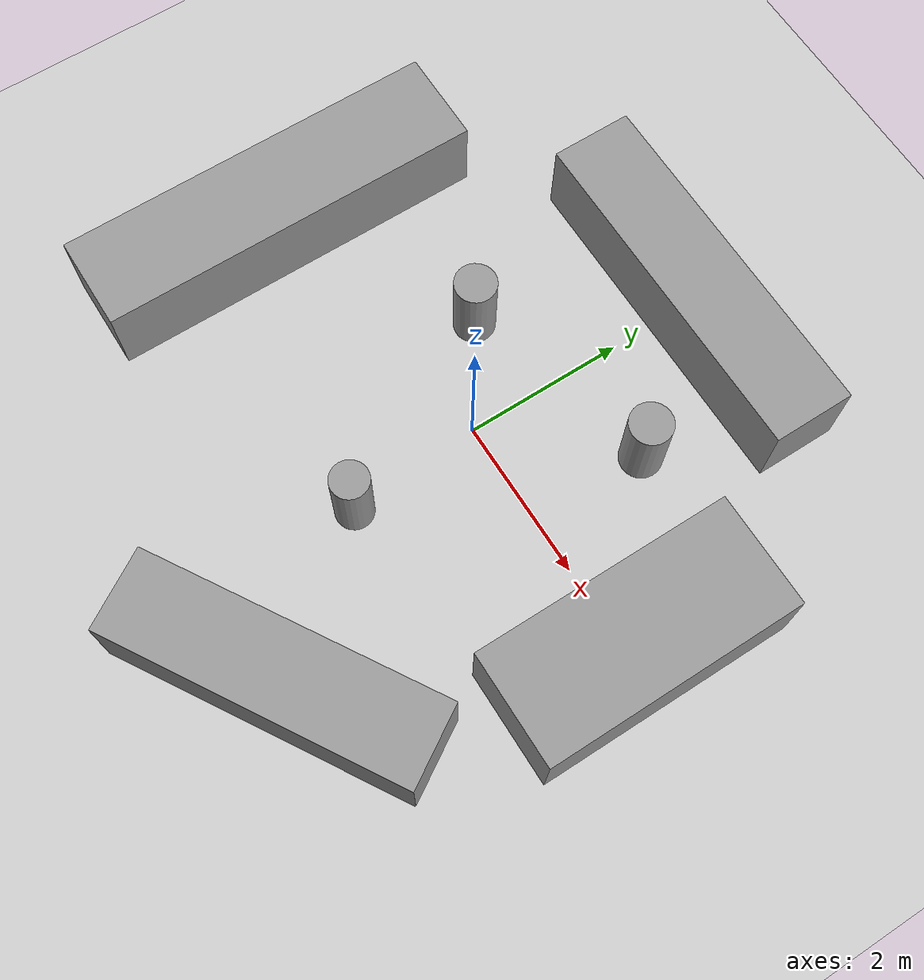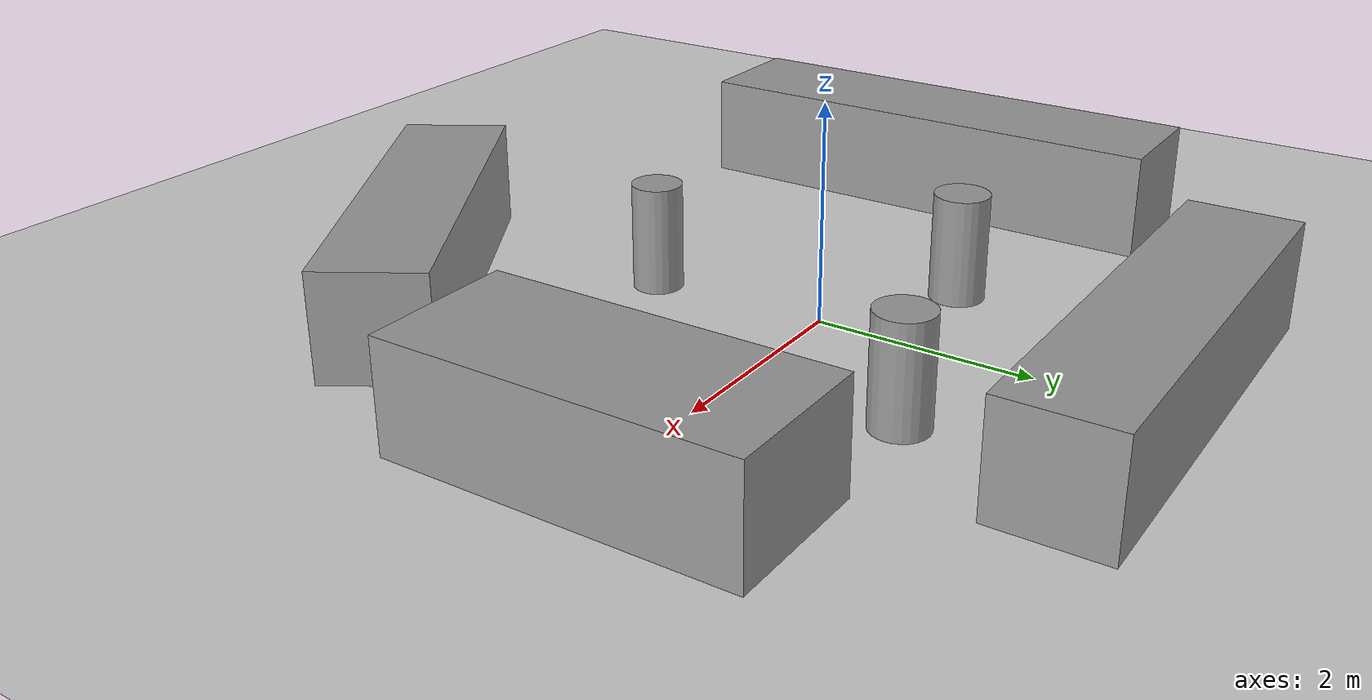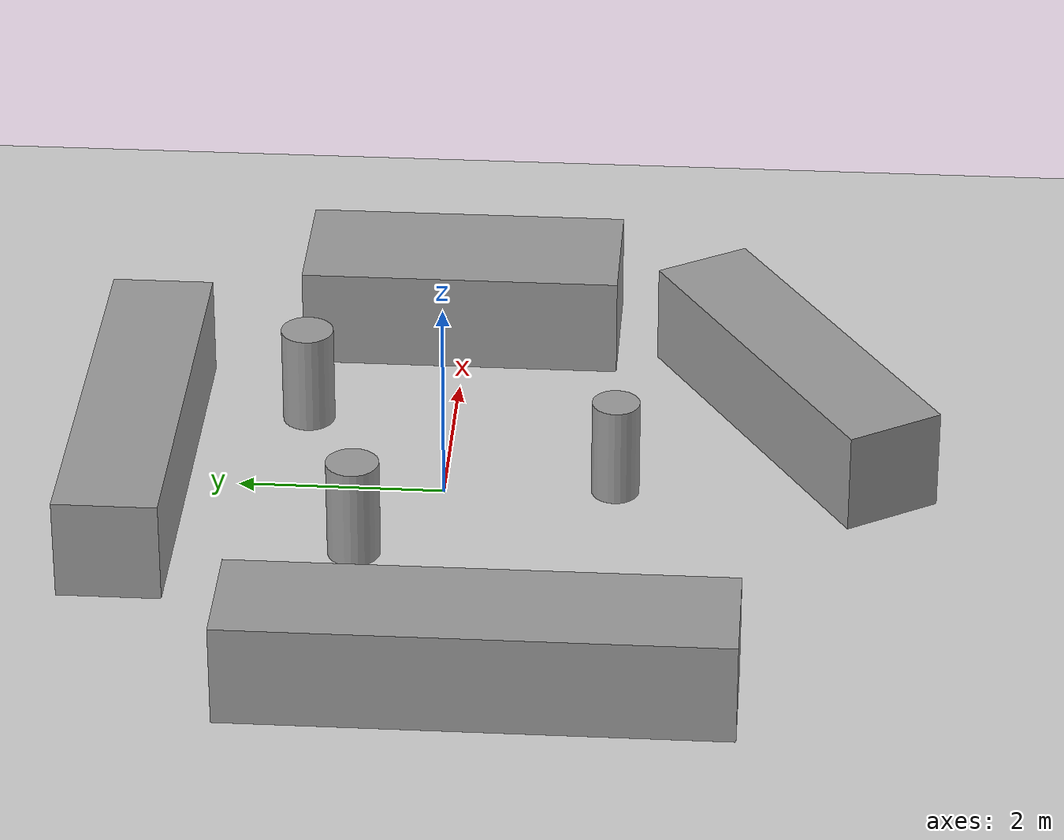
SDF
<sdf version="1.7">
 <world name="default">
  <light name="sun" type="directional">
   <pose>0 0 10 0 -0 0</pose>
   <diffuse>0.8 0.8 0.8 1</diffuse>
   <specular>0.2 0.2 0.2 1</specular>
   <attenuation>
    <range>1000</range>
    <constant>0.9</constant>
    <linear>0.01</linear>
    <quadratic>0.001</quadratic>
   </attenuation>
   <direction>-0.5 0.1 -0.9</direction>
   <spot><inner_angle>0</inner_angle><outer_angle>0</outer_angle><falloff>0</falloff></spot>
  </light>
  <model name="ground_plane">
   <static>1</static>
   <link name="link">
    <collision name="collision">
     <geometry><plane><normal>0 0 1</normal><size>100 100</size></plane></geometry>
     <surface><friction><ode><mu>100</mu><mu2>50</mu2></ode></friction></surface>
    </collision>
    <visual name="visual">
     <cast_shadows>0</cast_shadows>
     <geometry><plane><normal>0 0 1</normal><size>100 100</size></plane></geometry>
     <material>
      <script><uri>file://media/materials/scripts/gazebo.material</uri><name>Gazebo/Grey</name></script>
     </material>
    </visual>
   </link>
  </model>
  <gravity>0 0 -9.8</gravity>
  <magnetic_field>6e-06 2.3e-05 -4.2e-05</magnetic_field>
  <atmosphere type="adiabatic"/>
  <physics type="ode">
   <max_step_size>0.001</max_step_size>
   <real_time_factor>1</real_time_factor>
   <real_time_update_rate>1000</real_time_update_rate>
  </physics>
  <scene><ambient>0.4 0.4 0.4 1</ambient><background>0.7 0.7 0.7 1</background><shadows>1</shadows></scene>
  <audio><device>default</device></audio>
  <spherical_coordinates>
   <surface_model>EARTH_WGS84</surface_model>
   <latitude_deg>0</latitude_deg>
   <longitude_deg>0</longitude_deg>
   <elevation>0</elevation>
   <heading_deg>0</heading_deg>
  </spherical_coordinates>
  <model name="unit_box">
   <pose>-3.5095 -0.57734 0.498343 -0.0007 -0 -0</pose>
   <link name="link">
    <inertial>
     <mass>1</mass>
     <inertia>
      <ixx>0.166667</ixx>
      <ixy>0</ixy>
      <ixz>0</ixz>
      <iyy>0.166667</iyy>
      <iyz>0</iyz>
      <izz>0.166667</izz>
     </inertia>
    </inertial>
    <collision name="collision"><geometry><box><size>1.16942 4.73784 1</size></box></geometry></collision>
    <visual name="visual">
     <geometry><box><size>1.16942 4.73784 1</size></box></geometry>
     <material>
      <script><name>Gazebo/Grey</name><uri>file://media/materials/scripts/gazebo.material</uri></script>
     </material>
    </visual>
   </link>
  </model>
  <model name="unit_box_0">
   <pose>3.11267 0.036238 0.5 0 1e-06 0.000161</pose>
   <link name="link">
    <inertial>
     <mass>1</mass>
     <inertia>
      <ixx>0.166667</ixx>
      <ixy>0</ixy>
      <ixz>0</ixz>
      <iyy>0.166667</iyy>
      <iyz>0</iyz>
      <izz>0.166667</izz>
     </inertia>
    </inertial>
    <collision name="collision"><geometry><box><size>1.39147 3.17352 1</size></box></geometry></collision>
    <visual name="visual">
     <geometry><box><size>1.39147 3.17352 1</size></box></geometry>
     <material>
      <script><name>Gazebo/Grey</name><uri>file://media/materials/scripts/gazebo.material</uri></script>
     </material>
    </visual>
   </link>
  </model>
  <model name="unit_box_1">
   <pose>0.060461 2.99673 0.498943 0 0.000491 1e-06</pose>
   <link name="link">
    <inertial>
     <mass>1</mass>
     <inertia>
      <ixx>0.166667</ixx>
      <ixy>0</ixy>
      <ixz>0</ixz>
      <iyy>0.166667</iyy>
      <iyz>0</iyz>
      <izz>0.166667</izz>
     </inertia>
    </inertial>
    <collision name="collision"><geometry><box><size>4.30309 1 1</size></box></geometry></collision>
    <visual name="visual">
     <geometry><box><size>4.30309 1 1</size></box></geometry>
     <material>
      <script><name>Gazebo/Grey</name><uri>file://media/materials/scripts/gazebo.material</uri></script>
     </material>
    </visual>
   </link>
  </model>
  <model name="unit_cylinder">
   <pose>-1.15667 0.77203 0.499998 -1e-06 1e-06 -2e-06</pose>
   <link name="link">
    <inertial>
     <mass>1</mass>
     <inertia><ixx>0.145833</ixx><ixy>0</ixy><ixz>0</ixz><iyy>0.145833</iyy><iyz>0</iyz><izz>0.125</izz></inertia>
    </inertial>
    <collision name="collision">
     <geometry><cylinder><radius>0.254902</radius><length>1</length></cylinder></geometry>
    </collision>
    <visual name="visual">
     <geometry><cylinder><radius>0.254902</radius><length>1</length></cylinder></geometry>
     <material>
      <script><name>Gazebo/Grey</name><uri>file://media/materials/scripts/gazebo.material</uri></script>
     </material>
    </visual>
   </link>
  </model>
  <model name="unit_cylinder_0">
   <pose>0.114459 -1.65509 0.5 1e-06 -0 -5e-06</pose>
   <link name="link">
    <inertial>
     <mass>1</mass>
     <inertia><ixx>0.145833</ixx><ixy>0</ixy><ixz>0</ixz><iyy>0.145833</iyy><iyz>0</iyz><izz>0.125</izz></inertia>
    </inertial>
    <collision name="collision">
     <geometry><cylinder><radius>0.231764</radius><length>1</length></cylinder></geometry>
    </collision>
    <visual name="visual">
     <geometry><cylinder><radius>0.231764</radius><length>1</length></cylinder></geometry>
     <material>
      <script><name>Gazebo/Grey</name><uri>file://media/materials/scripts/gazebo.material</uri></script>
     </material>
    </visual>
   </link>
  </model>
  <model name="unit_cylinder_1">
   <pose>1.31428 1.45385 0.499994 1e-06 -0 0</pose>
   <link name="link">
    <inertial>
     <mass>1</mass>
     <inertia><ixx>0.145833</ixx><ixy>0</ixy><ixz>0</ixz><iyy>0.145833</iyy><iyz>0</iyz><izz>0.125</izz></inertia>
    </inertial>
    <collision name="collision">
     <geometry><cylinder><radius>0.258707</radius><length>1</length></cylinder></geometry>
    </collision>
    <visual name="visual">
     <geometry><cylinder><radius>0.258707</radius><length>1</length></cylinder></geometry>
     <material>
      <script><name>Gazebo/Grey</name><uri>file://media/materials/scripts/gazebo.material</uri></script>
     </material>
    </visual>
   </link>
  </model>
  <model name="unit_box_2">
   <pose>1.42335 -3.36006 0.5 0 -0 0.551555</pose>
   <link name="link">
    <inertial>
     <mass>1</mass>
     <inertia>
      <ixx>0.166667</ixx>
      <ixy>0</ixy>
      <ixz>0</ixz>
      <iyy>0.166667</iyy>
      <iyz>0</iyz>
      <izz>0.166667</izz>
     </inertia>
    </inertial>
    <collision name="collision"><geometry><box><size>3.73455 1 1</size></box></geometry></collision>
    <visual name="visual">
     <geometry><box><size>3.73455 1 1</size></box></geometry>
     <material>
      <script><name>Gazebo/Grey</name><uri>file://media/materials/scripts/gazebo.material</uri></script>
     </material>
    </visual>
   </link>
  </model>
 </world>
</sdf>
